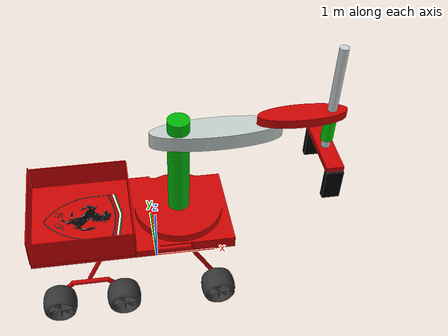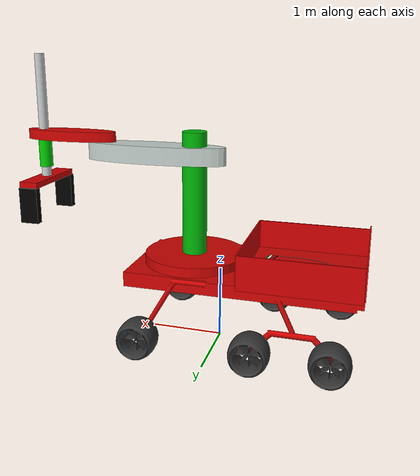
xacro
<robot name="rover" xmlns:xacro="http://www.ros.org/wiki/xacro">
<!-- includes -->
<xacro:include filename="$(find rover_description)/urdf/base/robot_base.urdf.xacro"/>
<xacro:include filename="$(find rover_description)/urdf/wheels/rover_wheel.urdf.xacro"/>
<xacro:include filename="$(find rover_description)/urdf/arm/scara.urdf.xacro"/>
<xacro:include filename="$(find rover_description)/urdf/sensors/camera.urdf.xacro"/>
<xacro:include filename="$(find rover_description)/urdf/sensors/imu_sensor.urdf.xacro"/>
<!-- argumentos -->
<xacro:arg name="robot_ns" default=""/>
<xacro:arg name="prefix" default=""/>

<xacro:property name="wheel_del_x" value="0.87194"/>
<xacro:property name="wheel_med_x" value="-0.62806"/>
<xacro:property name="wheel_tr_x" value="-1.62806"/>
<xacro:property name="wheel_y" value="1.0"/>
<xacro:property name="wheel_z" value="-0.70680"/>

<!-- Robot Parts -->
<!-- Base -->
<xacro:robot_base x="0.0" y="0.0" yaw="0.0"/>
<!-- Wheels -->
<xacro:rover_wheel prefix="front_right_" parent_link="base_link" x_1="${wheel_del_x}" y_1="${wheel_y}" z_1="${wheel_z}" r="-1.57080" p="0" y="0">
</xacro:rover_wheel>
<xacro:rover_wheel prefix="front_left_" parent_link="base_link" x_1="${wheel_del_x}" y_1="-${wheel_y}" z_1="${wheel_z}" r="-1.57080" p="0" y="0">
</xacro:rover_wheel>
<xacro:rover_wheel prefix="mid_right_" parent_link="base_link" x_1="${wheel_med_x}" y_1="${wheel_y}" z_1="${wheel_z}" r="-1.57080" p="0" y="0">
</xacro:rover_wheel>
<xacro:rover_wheel prefix="mid_left_" parent_link="base_link" x_1="${wheel_med_x}" y_1="-${wheel_y}" z_1="${wheel_z}" r="-1.57080" p="0" y="0">
</xacro:rover_wheel>
<xacro:rover_wheel prefix="back_right_" parent_link="base_link" x_1="${wheel_tr_x}" y_1="${wheel_y}" z_1="${wheel_z}" r="-1.57080" p="0" y="0">
</xacro:rover_wheel>
<xacro:rover_wheel prefix="back_left_" parent_link="base_link" x_1="${wheel_tr_x}" y_1="-${wheel_y}" z_1="${wheel_z}" r="-1.57080" p="0" y="0">
</xacro:rover_wheel>
<!-- Arm -->
<xacro:scara parent_link="base_link" x="0.37781" y="0.00968" z="1.04607" r="0" p="0" yw="0">
</xacro:scara>
<!-- sensores -->
<xacro:imu parent_link="base_link" prefix="imu" x="0" y="0" z="0.3"/>

<xacro:camera parent_link="link5_link" prefix="arm_cam" x="0" y="0" z="-0.07" rot="1.5708"/>
<xacro:camera parent_link="base_link" prefix="base_cam" x="1.2" y="0" z="0" rot="0"/>

<!-- Gazebo ROS control plugins -->
<xacro:include filename="$(find rover_description)/urdf/ros2_control.urdf.xacro"/>
<xacro:arg name="config_controllers" default="$(find rover_description)/config/rover_controllers.yaml"/>
<xacro:arg name="update_rate" default="100"/>
<xacro:ros2_control/>
</robot>

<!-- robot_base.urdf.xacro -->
<robot name="robot" xmlns:xacro="http://www.ros.org/wiki/xacro">

<xacro:macro name="robot_base" params="x y yaw">
  <joint name="base_footprint_to_base_link" type="fixed">
    <parent link="base_footprint"/>
    <child link="base_link"/>
    <origin xyz="${x}  ${y}  1"
        rpy="0 0 ${yaw}"/>
  </joint>
  <joint name="logo_joint" type="fixed">
    <origin rpy="0.00000 0.00000 0.00000" xyz="-0.12806 -0.00030 -0.96680"/>
    <parent link="base_link"/>
    <child link="logo_link"/>
  </joint>
  <joint name="maletero_link_joint" type="fixed">
    <origin rpy="0.00000 0.00000 0.00000" xyz="-1.16553 0.00000 0.21295"/>
    <parent link="base_link"/>
    <child link="maletero_link"/>
  </joint>
  <link name="base_footprint"/>
  <link name="base_link">
    <collision>
      <origin xyz="-0.99152 -0.00030 0.03627" rpy="0 0 0"/>
      <geometry>
        <mesh filename="package://rover_description/meshes/dae/Cube.060.dae"
              scale="0.98727 0.81300 0.06460"/>
      </geometry>
    </collision>
    <inertial>
      <mass value="40.0"/>
      <origin xyz="-0.23603 -0.00025 0.01308"/>
      <inertia ixx="11.77417" ixy="0.00177" ixz="-3.36716"
               iyy="29.58146" iyz="0.00657" izz="30.57751"/>
    </inertial>
    <visual>
      <origin xyz="-0.99152 -0.00030 0.03627"/>
      <geometry>
        <mesh filename="package://rover_description/meshes/dae/Cube.060.dae"
              scale="0.98727 0.81300 0.06460"/>
      </geometry>
      <material name="Material.008"/>
    </visual>
  </link>
  <link name="maletero_link">
    <collision name="maletero.001_collision">
      <origin rpy="0.00000 0.00000 1.57080" xyz="0.77331 -0.01181 0.06098"/>
      <geometry>
        <mesh filename="package://rover_description/meshes/dae/Cube.003.dae" scale="0.81928 0.01000 0.23300"/>
      </geometry>
    </collision>
    <collision name="maletero.002_collision">
      <origin rpy="0.00000 0.00000 0.00000" xyz="-0.01391 0.81152 0.06389"/>
      <geometry>
        <mesh filename="package://rover_description/meshes/dae/Cube.004.dae" scale="0.78401 0.01000 0.23300"/>
      </geometry>
    </collision>
    <collision name="maletero.003_collision">
      <origin rpy="0.00000 0.00000 0.00000" xyz="-0.01391 -0.81283 0.06234"/>
      <geometry>
        <mesh filename="package://rover_description/meshes/dae/Cube.005.dae" scale="0.78569 0.01000 0.23300"/>
      </geometry>
    </collision>
    <collision name="maletero_collision">
      <origin rpy="0.00000 0.00000 1.57080" xyz="-0.81160 -0.00501 0.10948"/>
      <geometry>
        <mesh filename="package://rover_description/meshes/dae/Cube.002.dae" scale="0.81313 0.01045 0.23300"/>
      </geometry>
    </collision>
    <visual name="maletero">
      <material name="Material.016"/>
      <origin rpy="0.00000 0.00000 1.57080" xyz="-0.81176 -0.00501 0.10066"/>
      <geometry>
        <mesh filename="package://rover_description/meshes/dae/Cube.002.dae" scale="0.81242 0.00946 0.23944"/>
      </geometry>
    </visual>
    <visual name="maletero.001">
      <material name="Material.019"/>
      <origin rpy="0.00000 0.00000 1.57080" xyz="0.77545 -0.01182 0.06098"/>
      <geometry>
        <mesh filename="package://rover_description/meshes/dae/Cube.003.dae" scale="0.81957 0.01000 0.23300"/>
      </geometry>
    </visual>
    <visual name="maletero.002">
      <material name="Material.018"/>
      <origin rpy="0.00000 0.00000 0.00000" xyz="-0.01391 0.81152 0.06389"/>
      <geometry>
        <mesh filename="package://rover_description/meshes/dae/Cube.004.dae" scale="0.78401 0.01000 0.23300"/>
      </geometry>
    </visual>
    <visual name="maletero.003">
      <material name="Material.017"/>
      <origin rpy="0.00000 0.00000 0.00000" xyz="-0.01391 -0.81039 0.06234"/>
      <geometry>
        <mesh filename="package://rover_description/meshes/dae/Cube.005.dae" scale="0.79894 0.01000 0.23300"/>
      </geometry>
    </visual>
  </link>
  <link name="logo_link">
    <visual name="logo">
      <material name="SVGMat.003"/>
      <origin rpy="0.00000 0.00000 0.00000" xyz="0.00000 0.00000 0.00000"/>
      <geometry>
        <mesh filename="package://rover_description/meshes/dae/Curve.013.dae" scale="1.00000 1.00000 1.00000"/>
      </geometry>
    </visual>
  </link>

</xacro:macro>

</robot>

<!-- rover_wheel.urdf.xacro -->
<!-- created with Phobos 1.0.1 "Capricious Choutengan" -->
<robot name="robot" xmlns:xacro="http://wiki.ros.org/xacro">

<xacro:macro name="rover_wheel" params="prefix parent_link x_1 y_1 z_1 r p y">
  <joint name="${prefix}rueda_joint" type="continuous">
    <limit effort="1000" velocity="100.0"/>
    <origin rpy="${r} ${p} ${y}" xyz="${x_1} ${y_1} ${z_1}"/>
    <parent link="${parent_link}"/>
    <child link="${prefix}rueda_link"/>
    <axis xyz="0.00000 0.00000 1.00000"/>
  </joint>
  <link name="${prefix}rueda_link">
    <collision name="${prefix}rueda_collision">
      <origin rpy="1.57080 0.00000 0.00000" xyz="0.00000 0.00000 0.00000"/>
      <geometry>
        <mesh filename="package://rover_description/meshes/dae/Cylinder.006.dae" scale="0.00814 0.09492 0.07939"/>
      </geometry>
    </collision>

      <surface>
        <friction>
          <ode>
            <mu>1.0</mu>
            <mu2>1.0</mu2>
          </ode>
        </friction>
      </surface>
    <inertial>
      <inertia ixx="0.07116" ixy="0.00019" ixz="0.00075" iyy="0.10001" iyz="-0.00018" izz="0.06854"/>
      <origin rpy="0.00000 0.00000 0.00000" xyz="0.00000 -0.00000 0.00000"/>
      <mass value="3.00000"/>
    </inertial>
    <visual name="${prefix}rueda">
      <material name="Material.001"/>
      <origin rpy="1.57080 -0.00000 0.78540" xyz="0.00000 0.00000 0.00000"/>
      <geometry>
        <mesh filename="package://rover_description/meshes/dae/Cylinder.006.dae" scale="0.00814 0.09492 0.07939"/>
      </geometry>
    </visual>
  </link>

  <transmission name="${prefix}rueda_joint_trans">
    <type>transmission_interface/SimpleTransmission</type>
    <joint name="${prefix}rueda_joint">
      <hardwareInterface>hardware_interface/VelocityJointInterface</hardwareInterface>
    </joint>
    <actuator name="${prefix}rueda_motor">
      <mechanicalReduction>1</mechanicalReduction>
    </actuator>
  </transmission>

  <gazebo reference="${prefix}rueda_link">
    <mu1>5</mu1>
    <mu2>5</mu2>
  </gazebo>

</xacro:macro>
</robot>

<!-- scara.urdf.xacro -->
<!-- created with Phobos 1.0.1 "Capricious Choutengan" -->
<robot name="robot" xmlns:xacro="http://wiki.ros.org/xacro">

<xacro:include filename="$(find rover_description)/urdf/arm/gripper.urdf.xacro"/>

<xacro:macro name="scara" params="parent_link x y z r p yw">
  <joint name="arm_base_link_joint" type="fixed">
    <origin rpy="${r} ${p} ${yw}" xyz="${x} ${y} ${z}"/>
    <parent link="${parent_link}"/>
    <child link="arm_base_link"/>
  </joint>
  <joint name="link1_link_joint" type="revolute">
    <limit lower="-3.05000" upper="3.05000" effort="1000" velocity="100.0"/>
    <origin rpy="0.00000 0.00000 0.00000" xyz="0.00703 0.00482 0.54623"/>
    <parent link="arm_base_link"/>
    <child link="link1_link"/>
    <axis xyz="0.00000 0.00000 1.00000"/>
  </joint>
  <joint name="link2_link_joint" type="revolute">
    <limit lower="-2.00000" upper="2.00000" effort="1000" velocity="100.0"/>
    <origin rpy="0.00000 0.00000 -3.14159" xyz="1.37657 -0.01190 0.19480"/>
    <parent link="link1_link"/>
    <child link="link2_link"/>
    <axis xyz="0.00000 0.00000 1.00000"/>
  </joint>
  <joint name="link3_link_joint" type="revolute">
    <limit lower="-1.57000" upper="1.57000" effort="1000" velocity="100.0"/>
    <origin rpy="0.00000 0.00000 3.14159" xyz="-0.88330 0.00711 0.06671"/>
    <parent link="link2_link"/>
    <child link="link3_link"/>
    <axis xyz="0.00000 0.00000 1.00000"/>
  </joint>
  <joint name="link4_link_joint" type="prismatic">
    <limit lower="-1.50000" upper="0.20000" effort="1000" velocity="100.0"/>
    <origin rpy="0.00000 0.00000 0.00000" xyz="0.00446 0.00427 0.17412"/>
    <parent link="link3_link"/>
    <child link="link4_link"/>
    <axis xyz="0.00000 0.00000 1.00000"/>
  </joint>
  <joint name="link5_link_joint" type="fixed">
    <origin rpy="0.00000 0.00000 0.00000" xyz="0.00146 -0.00006 -0.89452"/>
    <parent link="link4_link"/>
    <child link="link5_link"/>
  </joint>
  <link name="arm_base_link">
    <collision name="base_collision">
      <origin rpy="0.00000 0.00000 0.00000" xyz="0.00000 0.00000 0.00000"/>
      <geometry>
        <mesh filename="package://rover_description/meshes/dae/Cylinder.009.dae" scale="0.16927 0.16927 0.86707"/>
      </geometry>
    </collision>
    <inertial>
      <inertia ixx="1.54632" ixy="-0.00000" ixz="0.00000" iyy="1.54632" iyz="-0.00000" izz="0.08541"/>
      <origin rpy="0.00000 0.00000 0.00000" xyz="0.00000 0.00000 0.00000"/>
      <mass value="6.00000"/>
    </inertial>
    <visual name="base">
      <material name="Material.009"/>
      <origin rpy="0.00000 0.00000 0.00000" xyz="0.00000 0.00000 0.00000"/>
      <geometry>
        <mesh filename="package://rover_description/meshes/dae/Cylinder.009.dae" scale="0.16927 0.16927 0.86707"/>
      </geometry>
    </visual>
  </link>
  <link name="link1_link">
    <collision name="link1_collision">
      <origin rpy="0.00000 0.00000 0.00000" xyz="0.55655 0.00000 0.00000"/>
      <geometry>
        <mesh filename="package://rover_description/meshes/dae/Cylinder.dae" scale="1.00000 0.23300 0.12300"/>
      </geometry>
    </collision>
    <inertial>
      <inertia ixx="0.06485" ixy="-0.00000" ixz="0.00000" iyy="0.88705" iyz="-0.00000" izz="0.91659"/>
      <origin rpy="0.00000 0.00000 0.00000" xyz="0.55655 0.00000 0.00000"/>
      <mass value="3.50000"/>
    </inertial>
    <visual name="link1">
      <material name="Material.014"/>
      <origin rpy="0.00000 0.00000 0.00000" xyz="0.55655 0.00000 0.00000"/>
      <geometry>
        <mesh filename="package://rover_description/meshes/dae/Cylinder.dae" scale="1.00000 0.23300 0.12300"/>
      </geometry>
    </visual>
  </link>
  <link name="link2_link">
    <collision name="link2_collision">
      <origin rpy="0.00000 0.00000 3.14159" xyz="-0.44475 0.00000 0.00000"/>
      <geometry>
        <mesh filename="package://rover_description/meshes/dae/Cylinder.013.dae" scale="0.67571 0.18837 0.07006"/>
      </geometry>
    </collision>
    <inertial>
      <inertia ixx="0.04180" ixy="0.00000" ixz="0.00000" iyy="0.46021" iyz="0.00000" izz="0.48892"/>
      <origin rpy="0.00000 0.00000 0.00000" xyz="-0.44475 0.00000 0.00000"/>
      <mass value="4.00000"/>
    </inertial>
    <visual name="link2">
      <material name="Material.007"/>
      <origin rpy="0.00000 0.00000 -0.00000" xyz="-0.44475 0.00000 0.00000"/>
      <geometry>
        <mesh filename="package://rover_description/meshes/dae/Cylinder.013.dae" scale="0.67571 0.18837 0.07006"/>
      </geometry>
    </visual>
  </link>
  <link name="link3_link">
    <collision name="link3_collision">
      <origin rpy="0.00000 0.00000 0.00000" xyz="0.00000 0.00000 -0.28787"/>
      <geometry>
        <mesh filename="package://rover_description/meshes/dae/Cylinder.016.dae" scale="0.09429 0.09429 0.25145"/>
      </geometry>
    </collision>
    <inertial>
      <inertia ixx="0.02243" ixy="0.00000" ixz="0.00000" iyy="0.02243" iyz="0.00000" izz="0.00442"/>
      <origin rpy="0.00000 0.00000 0.00000" xyz="0.00000 0.00000 -0.29248"/>
      <mass value="1.00000"/>
    </inertial>
    <visual name="link3">
      <material name="Material.015"/>
      <origin rpy="0.00000 0.00000 0.00000" xyz="0.00000 0.00000 -0.29248"/>
      <geometry>
        <mesh filename="package://rover_description/meshes/dae/Cylinder.016.dae" scale="0.09429 0.09429 0.24632"/>
      </geometry>
    </visual>
  </link>
  <link name="link4_link">
    <collision name="link4_collision">
      <origin rpy="0.00000 0.00000 0.00000" xyz="0.00000 0.00000 0.00000"/>
      <geometry>
        <mesh filename="package://rover_description/meshes/dae/Cylinder.018.dae" scale="0.06875 0.06875 0.88360"/>
      </geometry>
    </collision>
    <inertial>
      <inertia ixx="0.52285" ixy="-0.00000" ixz="-0.00000" iyy="0.52285" iyz="-0.00000" izz="0.00470"/>
      <origin rpy="0.00000 0.00000 0.00000" xyz="0.00000 0.00000 0.00000"/>
      <mass value="2.00000"/>
    </inertial>
    <visual name="link4">
      <material name="Material.011"/>
      <origin rpy="0.00000 0.00000 0.00000" xyz="0.00000 0.00000 0.00000"/>
      <geometry>
        <mesh filename="package://rover_description/meshes/dae/Cylinder.018.dae" scale="0.06875 0.06875 0.88360"/>
      </geometry>
    </visual>
  </link>
  <link name="link5_link">
    <collision name="link5_collision">
      <origin rpy="0.00000 0.00000 0.00000" xyz="0.00000 0.00000 0.00000"/>
      <geometry>
        <mesh filename="package://rover_description/meshes/dae/Cube.029.dae" scale="0.53959 2.07906 0.16559"/>
      </geometry>
    </collision>
    <inertial>
      <inertia ixx="0.09062" ixy="0.00000" ixz="0.00000" iyy="0.00664" iyz="0.00000" izz="0.09612"/>
      <origin rpy="0.00000 0.00000 0.00000" xyz="-0.00000 0.00000 0.00000"/>
      <mass value="1.00000"/>
    </inertial>
    <visual name="link5">
      <material name="Material.010"/>
      <origin rpy="0.00000 0.00000 0.00000" xyz="0.00000 0.00000 0.00000"/>
      <geometry>
        <mesh filename="package://rover_description/meshes/dae/Cube.029.dae" scale="0.53959 2.07906 0.16559"/>
      </geometry>
    </visual>
  </link>

  <xacro:gripper parent_link="link5_link" x_1="0.00025" y_1="0.50000" z_1="-0.28960" x_2="0.00025" y_2="-0.50000" z_2="-0.28960" >
  </xacro:gripper>

  <transmission name="link1_trans">
  <type>transmission_interface/SimpleTransmission</type>
  <joint name="link1_link_joint">
    <hardwareInterface>hardware_interface/PositionJointInterface</hardwareInterface>
  </joint>
  <actuator name="link1_motor">
    <mechanicalReduction>1</mechanicalReduction>
  </actuator>
</transmission>
<transmission name="link2_trans">
  <type>transmission_interface/SimpleTransmission</type>
  <joint name="link2_link_joint">
    <hardwareInterface>hardware_interface/PositionJointInterface</hardwareInterface>
  </joint>
  <actuator name="link2_motor">
    <mechanicalReduction>1</mechanicalReduction>
  </actuator>
</transmission>
<transmission name="link3_trans">
  <type>transmission_interface/SimpleTransmission</type>
  <joint name="link3_link_joint">
    <hardwareInterface>hardware_interface/PositionJointInterface</hardwareInterface>
  </joint>
  <actuator name="link3_motor">
    <mechanicalReduction>1</mechanicalReduction>
  </actuator>
</transmission>
<transmission name="link4_trans">
  <type>transmission_interface/SimpleTransmission</type>
  <joint name="link4_link_joint">
    <hardwareInterface>hardware_interface/PositionJointInterface</hardwareInterface>
  </joint>
  <actuator name="link4_motor">
    <mechanicalReduction>1</mechanicalReduction>
  </actuator>
</transmission>

</xacro:macro>
</robot>

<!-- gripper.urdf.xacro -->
<!-- created with Phobos 1.0.1 "Capricious Choutengan" -->
<robot name="robot" xmlns:xacro="http://wiki.ros.org/xacro">

<xacro:macro name="gripper" params="parent_link x_1 y_1 z_1 x_2 y_2 z_2">

  <joint name="pinza_1_link_joint" type="prismatic">
    <limit lower="0.00000" upper="0.30000" effort="1000" velocity="100.0"/>
    <origin rpy="1.57080 0.00000 0.00000" xyz="${x_1} ${y_1} ${z_1}"/>
    <parent link="${parent_link}"/>
    <child link="pinza_1_link"/>
    <axis xyz="0.00000 0.00000 1.00000"/>
  </joint>
  <joint name="pinza_2_link_joint" type="prismatic">
    <limit lower="0.00000" upper="0.30000" effort="1000" velocity="100.0"/>
    <origin rpy="-1.57080 0.00000 0.00000" xyz="${x_2} ${y_2} ${z_2}"/>
    <parent link="${parent_link}"/>
    <child link="pinza_2_link"/>
    <axis xyz="0.00000 0.00000 1.00000"/>
  </joint>

  <link name="pinza_1_link">
    <collision name="pinza_1_collision">
      <origin rpy="-1.57080 0.00000 0.00000" xyz="0.00000 0.00000 -0.00000"/>
      <geometry>
        <mesh filename="package://rover_description/meshes/dae/Cube.031.dae" scale="0.53728 0.20000 1.00000"/>
      </geometry>
    </collision>
    <inertial>
      <inertia ixx="0.04333" ixy="0.00000" ixz="0.00000" iyy="0.05369" iyz="0.00000" izz="0.01369"/>
      <origin rpy="0.00000 0.00000 0.00000" xyz="0.00000 0.00000 -0.00000"/>
      <mass value="2.00000"/>
    </inertial>
    <visual name="pinza_1">
      <material name="Material.012"/>
      <origin rpy="-1.57080 0.00000 0.00000" xyz="0.00000 0.00000 -0.00000"/>
      <geometry>
        <mesh filename="package://rover_description/meshes/dae/Cube.031.dae" scale="0.53728 0.20000 1.00000"/>
      </geometry>
    </visual>
  </link>
  <link name="pinza_2_link">
    <collision name="pinza_2_collision">
      <origin rpy="1.57080 0.00000 0.00000" xyz="0.00000 -0.00000 -0.00000"/>
      <geometry>
        <mesh filename="package://rover_description/meshes/dae/Cube.032.dae" scale="0.53728 0.20000 1.00000"/>
      </geometry>
    </collision>
    <inertial>
      <inertia ixx="0.04333" ixy="0.00000" ixz="0.00000" iyy="0.05369" iyz="-0.00000" izz="0.01369"/>
      <origin rpy="0.00000 0.00000 0.00000" xyz="0.00000 -0.00000 -0.00000"/>
      <mass value="2.00000"/>
    </inertial>
    <visual name="pinza_2">
      <material name="Material.013"/>
      <origin rpy="1.57080 0.00000 0.00000" xyz="0.00000 -0.00000 -0.00000"/>
      <geometry>
        <mesh filename="package://rover_description/meshes/dae/Cube.032.dae" scale="0.53728 0.20000 1.00000"/>
      </geometry>
    </visual>
  </link>

<transmission name="pinz_1_trans">
  <type>transmission_interface/SimpleTransmission</type>
  <joint name="pinza_1_link_joint">
    <hardwareInterface>hardware_interface/PositionJointInterface</hardwareInterface>
  </joint>
  <actuator name="pinza_1_motor">
    <mechanicalReduction>1</mechanicalReduction>
  </actuator>
</transmission>
<transmission name="pinza_2_trans">
  <type>transmission_interface/SimpleTransmission</type>
  <joint name="pinza_2_link_joint">
    <hardwareInterface>hardware_interface/PositionJointInterface</hardwareInterface>
  </joint>
  <actuator name="pinza_2_motor">
    <mechanicalReduction>1</mechanicalReduction>
  </actuator>
</transmission>

</xacro:macro>
</robot>

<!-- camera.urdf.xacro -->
<robot xmlns:xacro="http://www.ros.org/wiki/xacro">

<xacro:include filename="$(find rover_description)/urdf/sensors/sensors.urdf.xacro"/>
<xacro:macro name="camera"
             params="parent_link prefix x y z rot">

  <joint name="${prefix}_camera_base_joint" type="fixed">
    <parent link="${parent_link}"/>
    <child link="${prefix}_camera_base_link"/>
    <origin xyz="${x} ${y} ${z}" rpy="0 ${rot} 0"/>
  </joint>
  <joint name="${prefix}_camera_joint" type="fixed">
    <parent link="${prefix}_camera_base_link"/>
    <child link="${prefix}_camera_frame"/>
    <origin xyz="0 0 0" rpy="0 0 0"/>
  </joint>
  <joint name="${prefix}_camera_optical_joint" type="fixed">
    <parent link="${prefix}_camera_frame"/>
    <child link="${prefix}_camera_optical_frame"/>
    <origin xyz="0 0 0" rpy="-1.5708 0 -1.5708"/>
  </joint>

  <link name="${prefix}_camera_base_link"/>
  <link name="${prefix}_camera_frame"/>
  <link name="${prefix}_camera_optical_frame"/>
  <xacro:camera_sensor prefix="${prefix}"/>

</xacro:macro>

</robot>

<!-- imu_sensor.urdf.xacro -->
<robot xmlns:xacro="http://www.ros.org/wiki/xacro">
<xacro:include filename="$(find rover_description)/urdf/sensors/sensors.urdf.xacro"/>

<xacro:macro name="imu" params="parent_link prefix x y z">

  <link name="${prefix}_imu_link"/>
  <joint name="${prefix}_imu_joint" type="fixed">
    <parent link="${parent_link}"/>
    <child link="${prefix}_imu_link"/>
    <origin xyz="${x} ${y} ${z}" rpy="0 0 0"/>
  </joint>

  <xacro:imu_sensor prefix="${prefix}"/>

</xacro:macro>

</robot>
